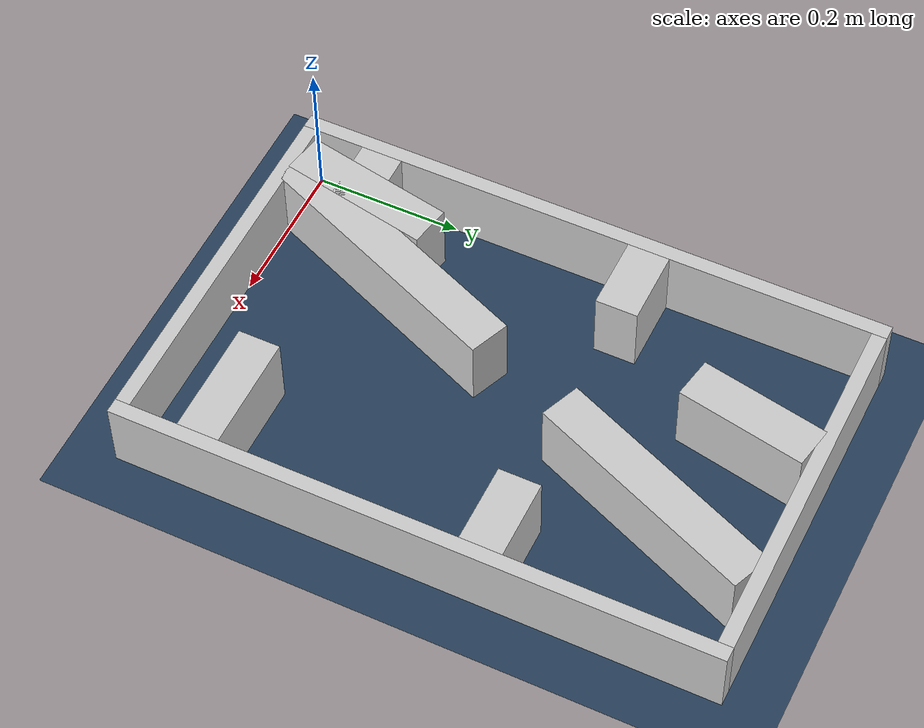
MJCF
<?xml version="1.0" ?>
<mujoco model="generated_real_template">
  <compiler angle="degree"/>
  <option timestep="0.002" integrator="implicitfast" iterations="100" cone="elliptic"/>
  <default>
    <geom density="1"/>
  </default>
  <asset>
    <texture builtin="gradient" height="3072" rgb1="0.3 0.5 0.7" rgb2="0 0 0" type="skybox" width="512"/>
    <texture builtin="checker" height="300" mark="edge" markrgb="0.8 0.8 0.8" name="groundplane" rgb1="0.2 0.3 0.4" rgb2="0.1 0.2 0.3" type="2d" width="300"/>
    <material name="groundplane" reflectance="0.2" texrepeat="5 5" texture="groundplane" texuniform="true"/>
  </asset>
  <worldbody>
    <light dir="0 0 -1" directional="true" pos="0 0 1.5"/>
    <geom name="floor" type="plane" condim="4" friction="0.5 0.005 0.001" material="groundplane" size="0 0 0.05"/>
    <body name="walls">
      <geom name="wall_boundary_left" type="box" condim="4" friction="1.0 0.005 0.0001" rgba="0.8 0.8 0.8 1" pos="-0.010000 0.387500 0.050000" euler="0 0 0.000000" size="0.010000 0.407500 0.050000"/>
      <geom name="wall_boundary_right" type="box" condim="4" friction="1.0 0.005 0.0001" rgba="0.8 0.8 0.8 1" pos="0.500000 0.387500 0.050000" euler="0 0 0.000000" size="0.010000 0.407500 0.050000"/>
      <geom name="wall_boundary_bottom" type="box" condim="4" friction="1.0 0.005 0.0001" rgba="0.8 0.8 0.8 1" pos="0.245000 -0.010000 0.050000" euler="0 0 0.000000" size="0.245000 0.010000 0.050000"/>
      <geom name="wall_boundary_top" type="box" condim="4" friction="1.0 0.005 0.0001" rgba="0.8 0.8 0.8 1" pos="0.245000 0.785000 0.050000" euler="0 0 0.000000" size="0.245000 0.010000 0.050000"/>
      <geom name="wall_inner_1_1" type="box" condim="4" friction="1.0 0.005 0.0001" rgba="0.8 0.8 0.8 1" pos="0.136889 0.175568 0.050000" euler="0 0 67.389081" size="0.190186 0.028500 0.050000"/>
      <geom name="wall_inner_1_2" type="box" condim="4" friction="1.0 0.005 0.0001" rgba="0.8 0.8 0.8 1" pos="0.322828 0.622017 0.050000" euler="0 0 67.389081" size="0.165721 0.028500 0.050000"/>
      <geom name="wall_inner_2_1" type="box" condim="4" friction="1.0 0.005 0.0001" rgba="0.8 0.8 0.8 1" pos="0.042149 0.094374 0.050000" euler="0 0 0.000000" size="0.042149 0.028500 0.050000"/>
      <geom name="wall_inner_2_2" type="box" condim="4" friction="1.0 0.005 0.0001" rgba="0.8 0.8 0.8 1" pos="0.411766 0.094374 0.050000" euler="0 0 0.000000" size="0.078234 0.028500 0.050000"/>
      <geom name="wall_inner_3_1" type="box" condim="4" friction="1.0 0.005 0.0001" rgba="0.8 0.8 0.8 1" pos="0.174459 0.687928 0.050000" euler="0 0 -100.879121" size="0.088666 0.028500 0.050000"/>
      <geom name="wall_inner_3_2" type="box" condim="4" friction="1.0 0.005 0.0001" rgba="0.8 0.8 0.8 1" pos="0.061973 0.102649 0.050000" euler="0 0 -100.879121" size="0.104528 0.028500 0.050000"/>
      <geom name="wall_inner_4_1" type="box" condim="4" friction="1.0 0.005 0.0001" rgba="0.8 0.8 0.8 1" pos="0.050290 0.473501 0.050000" euler="0 0 0.000000" size="0.050290 0.028500 0.050000"/>
      <geom name="wall_inner_4_2" type="box" condim="4" friction="1.0 0.005 0.0001" rgba="0.8 0.8 0.8 1" pos="0.435884 0.473501 0.050000" euler="0 0 0.000000" size="0.054116 0.028500 0.050000"/>
    </body>
  </worldbody>
</mujoco>
